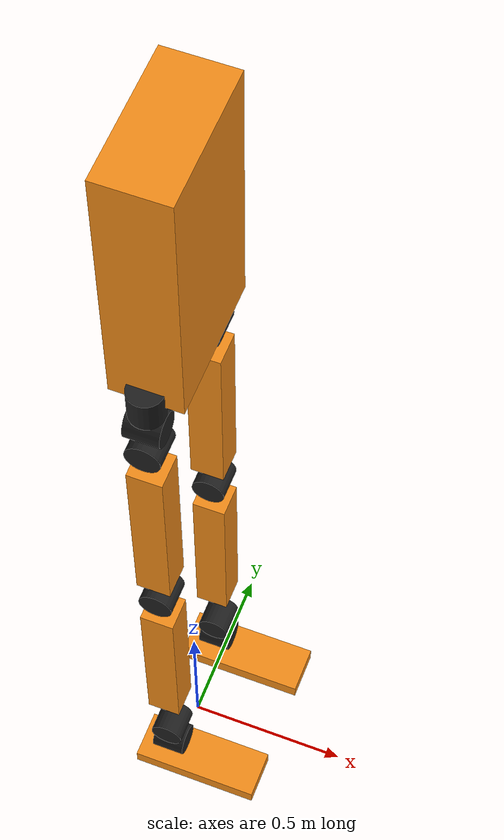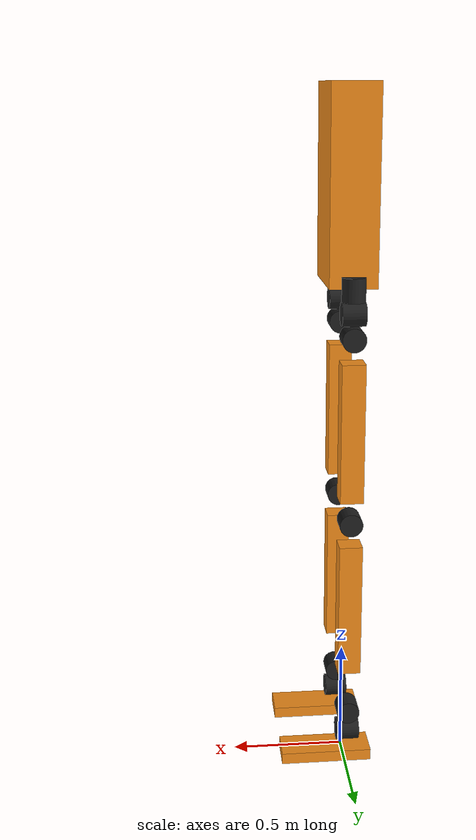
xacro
<?xml version='1.0'?>

<robot name="humanoid" xmlns:xacro="http://www.ros.org/wiki/xacro">

  <xacro:include filename="$(find humanoid_description)/urdf/humanoid.gazebo" />
  <xacro:include filename="$(find humanoid_description)/urdf/materials.xacro" />
  <xacro:include filename="$(find humanoid_description)/urdf/macros.xacro"    />
<!--lllllllllllllllllllllllllllllllllllllllllllllllllllllllllllll           sensors         lllllllllllllllllllllllllllllllllllllllll/-->

 <link name='imu'>
    <inertial>
      <mass value="1.0"/>
      <origin xyz="0.0 0.0 2.6" rpy=" 0 0 0"/>
      <inertia
          ixx="0.5" ixy="0" ixz="0"
          iyy="1.0" iyz="0"
          izz="0.1"
      />
    </inertial>
    <collision name='collision'>
      <origin xyz="0.0 0.0 2.6" rpy=" 0 0 0"/>
      <geometry>
        <box size=".1 .1 .1"/>
      </geometry>
    </collision>
    <visual name='waist_visual'>
      <origin xyz="0.0 0.0 2.6" rpy=" 0 0 0"/>
      <geometry>
        <box size=".1 .1 .1"/>
      </geometry>
    </visual>
  </link>

  <!--lllllllllllllllllllllllllllllllllllllllllllllllllllllllllllll     sensors fixed joints    lllllllllllllllllllllllllllllllllllllllll/-->

  <joint name="imu_joint" type="fixed">
    <origin rpy="0 0 0" xyz="0 0 0"/>
    <parent link="waist"/>
    <child link="imu"/>
  </joint>

<!--lllllllllllllllllllllllllllllllllllllllllllllllllllllllllllll     waist_world fixed joint     lllllllllllllllllllllllllllllllllllllllll/-->

<!--lllllllllllllllllllllllllllllllllllllllllllllllllllllllllllll           waist         lllllllllllllllllllllllllllllllllllllllll/-->

 <link name='waist'>
    <inertial>
      <mass value="10.0"/>
      <origin xyz="0.0 0.0 2.6" rpy=" 0 0 0"/>
      <inertia
          ixx="0.5" ixy="0" ixz="0"
          iyy="1.0" iyz="0"
          izz="0.1"
      />
    </inertial>
    <collision name='collision'>
      <origin xyz="0.0 0.0 2.6" rpy=" 0 0 0"/>
      <geometry>
        <box size=".2 .5 .8"/>
      </geometry>
    </collision>
    <visual name='waist_visual'>
      <origin xyz="0.0 0.0 2.6" rpy=" 0 0 0"/>
      <geometry>
        <box size=".2 .4 .8"/>
      </geometry>
    </visual>
  </link>

  <!--lllllllllllllllllllllllllllllllllllllllllllllllllllllllllllll    waist fixed joints       lllllllllllllllllllllllllllllllllllllllll/-->

  <joint name="hipl1_joint" type="revolute">
    <axis xyz="0 0 1"/>
    <limit effort="1000.0" lower="-1.5707" upper="1.5707" velocity="0.0"/>
    <origin rpy="0 0 0" xyz="0 -0.2 2.2"/>
    <parent link="waist"/>
    <child link="hipl1"/>
  </joint>

  <joint name="hipr1_joint" type="revolute">
    <axis xyz="0 0 1"/>
    <limit effort="1000.0" lower="-1.5707" upper="1.5707" velocity="0.0"/>
    <origin rpy="0 0 0" xyz="0 0.2 2.2"/>
    <parent link="waist"/>
    <child link="hipr1"/>
  </joint>

<!--lllllllllllllllllllllllllllllllllllllllllllllllllllllllllllll           hip 1         lllllllllllllllllllllllllllllllllllllllll/-->

  <link name="hipl1">
    <!--origin xyz="0.1 -0.13 0.1" rpy="0 1.5707 1.5707"/-->
    <collision name="collision">
      <origin xyz="0 -0.0 0" rpy="0 0 0"/>
      <geometry>
        <cylinder radius="0.05" length="0.1"/>
      </geometry>
    </collision>
    <visual name="hipl1_visual">
      <origin xyz="0 -0.0 0" rpy="0 0 0"/>
      <geometry>
        <cylinder radius="0.05" length="0.1"/>
      </geometry>
    </visual>
    <inertial>
      <origin xyz="0 -0.0 0" rpy="0 0 0"/>
      <mass value="1"/>
      <cylinder_inertia m="1" r="0.05" h="0.1"/>
      <inertia
        ixx="1.0" ixy="0.0" ixz="0.0"
        iyy="1.0" iyz="0.0"
        izz="1.0"/>
    </inertial>
  </link>

  <link name="hipr1">
    <!--origin xyz="0.1 -0.13 0.1" rpy="0 1.5707 1.5707"/-->
    <collision name="collision">
      <origin xyz="0 0.0 0" rpy="0 0 0"/>
      <geometry>
        <cylinder radius="0.05" length="0.1"/>
      </geometry>
    </collision>
    <visual name="hipr1_visual">
      <origin xyz="0 0.0 0" rpy="0 0 0"/>
      <geometry>
        <cylinder radius="0.05" length="0.1"/>
      </geometry>
    </visual>
    <inertial>
      <origin xyz="0 0.0 0" rpy="0 0 0"/>
      <mass value="1"/>
      <cylinder_inertia m="1" r="0.05" h="0.1"/>
      <inertia
        ixx="1.0" ixy="0.0" ixz="0.0"
        iyy="1.0" iyz="0.0"
        izz="1.0"/>
    </inertial>
  </link>

  <!--lllllllllllllllllllllllllllllllllllllllllllllllllllllllllllll        joints          lllllllllllllllllllllllllllllllllllllllll/-->

  <joint name="hipl2_joint" type="revolute">
    <axis xyz="1 0 0"/>
    <limit effort="1000.0" lower="-1.5707" upper="1.5707" velocity="0.0"/>
    <origin rpy="0 0 0" xyz="0 0.0 -0.1"/>
    <parent link="hipl1"/>
    <child link="hipl2"/>
  </joint>

  <joint name="hipr2_joint" type="revolute">
    <axis xyz="1 0 0"/>
    <limit effort="1000.0" lower="-1.5707" upper="1.5707" velocity="0.0"/>
    <origin rpy="0 0 0" xyz="0 0.0 -0.1"/>
    <parent link="hipr1"/>
    <child link="hipr2"/>
  </joint>

<!--lllllllllllllllllllllllllllllllllllllllllllllllllllllllllllll           hip 1         lllllllllllllllllllllllllllllllllllllllll/-->

  <link name="hipl2">
    <!--origin xyz="0.1 -0.13 0.1" rpy="0 1.5707 1.5707"/-->
    <collision name="collision">
      <origin xyz="0 -0.0 0" rpy="0 1.5707 0"/>
      <geometry>
        <cylinder radius="0.05" length="0.1"/>
      </geometry>
    </collision>
    <visual name="hipl2_visual">
      <origin xyz="0 -0.0 0" rpy="0 1.5707 0"/>
      <geometry>
        <cylinder radius="0.05" length="0.1"/>
      </geometry>
    </visual>
    <inertial>
      <origin xyz="0 -0.0 0" rpy="0 1.5707 0"/>
      <mass value="1"/>
      <cylinder_inertia m="1" r="0.05" h="0.1"/>
      <inertia
        ixx="1.0" ixy="0.0" ixz="0.0"
        iyy="1.0" iyz="0.0"
        izz="1.0"/>
    </inertial>
  </link>

  <link name="hipr2">
    <!--origin xyz="0.1 -0.13 0.1" rpy="0 1.5707 1.5707"/-->
    <collision name="collision">
      <origin xyz="0 0.0 0" rpy="0 1.5707 0"/>
      <geometry>
        <cylinder radius="0.05" length="0.1"/>
      </geometry>
    </collision>
    <visual name="hipr2_visual">
      <origin xyz="0 0.0 0" rpy="0 1.5707 0"/>
      <geometry>
        <cylinder radius="0.05" length="0.1"/>
      </geometry>
    </visual>
    <inertial>
      <origin xyz="0 0.0 0" rpy="0 1.5707 0"/>
      <mass value="1"/>
      <cylinder_inertia m="1" r="0.05" h="0.1"/>
      <inertia
        ixx="1.0" ixy="0.0" ixz="0.0"
        iyy="1.0" iyz="0.0"
        izz="1.0"/>
    </inertial>
  </link>

  <!--lllllllllllllllllllllllllllllllllllllllllllllllllllllllllllll        joints          lllllllllllllllllllllllllllllllllllllllll/-->

  <joint name="hipl3_joint" type="revolute">
    <axis xyz="0 1 0"/>
    <limit effort="1000.0" lower="-1.5707" upper="1.5707" velocity="0.0"/>
    <origin rpy="0 0 0" xyz="0 0.0 -0.1"/>
    <parent link="hipl2"/>
    <child link="hipl3"/>
  </joint>

  <joint name="hipr3_joint" type="revolute">
    <axis xyz="0 1 0"/>
    <limit effort="1000.0" lower="-1.5707" upper="1.5707" velocity="0.0"/>
    <origin rpy="0 0 0" xyz="0 0.0 -0.1"/>
    <parent link="hipr2"/>
    <child link="hipr3"/>
  </joint>

<!--lllllllllllllllllllllllllllllllllllllllllllllllllllllllllllll           hip 3         lllllllllllllllllllllllllllllllllllllllll/-->

  <link name="hipl3">
    <!--origin xyz="0.1 -0.13 0.1" rpy="0 1.5707 1.5707"/-->
    <collision name="collision">
      <origin xyz="0 -0.0 0" rpy="1.5707 0 0"/>
      <geometry>
        <cylinder radius="0.05" length="0.1"/>
      </geometry>
    </collision>
    <visual name="hipl3_visual">
      <origin xyz="0 -0.0 0" rpy="1.5707 0 0"/>
      <geometry>
        <cylinder radius="0.05" length="0.1"/>
      </geometry>
    </visual>
    <inertial>
      <origin xyz="0 -0.0 0" rpy="1.5707 0 0"/>
      <mass value="1"/>
      <cylinder_inertia m="1" r="0.05" h="0.1"/>
      <inertia
        ixx="1.0" ixy="0.0" ixz="0.0"
        iyy="1.0" iyz="0.0"
        izz="1.0"/>
    </inertial>
  </link>

  <link name="hipr3">
    <!--origin xyz="0.1 -0.13 0.1" rpy="0 1.5707 1.5707"/-->
    <collision name="collision">
      <origin xyz="0 0.0 0" rpy="1.5707 0 0"/>
      <geometry>
        <cylinder radius="0.05" length="0.1"/>
      </geometry>
    </collision>
    <visual name="hipr3_visual">
      <origin xyz="0 0.0 0" rpy="1.5707 0 0"/>
      <geometry>
        <cylinder radius="0.05" length="0.1"/>
      </geometry>
    </visual>
    <inertial>
      <origin xyz="0 0.0 0" rpy="1.5707 0 0"/>
      <mass value="1"/>
      <cylinder_inertia m="1" r="0.05" h="0.1"/>
      <inertia
        ixx="1.0" ixy="0.0" ixz="0.0"
        iyy="1.0" iyz="0.0"
        izz="1.0"/>
    </inertial>
  </link>

  <!--lllllllllllllllllllllllllllllllllllllllllllllllllllllllllllll      thigh fixed  joints          lllllllllllllllllllllllllllllllllllllllll/-->

  <joint name="thighl_joint" type="fixed">
    <origin rpy="0 0 0" xyz="0 0.0 -0.1"/>
    <parent link="hipl3"/>
    <child link="thighl"/>
  </joint>

  <joint name="thighr_joint" type="fixed">
    <origin rpy="0 0 0" xyz="0 0.0 -0.1"/>
    <parent link="hipr3"/>
    <child link="thighr"/>
  </joint>

<!--lllllllllllllllllllllllllllllllllllllllllllllllllllllllllllll           thigh         lllllllllllllllllllllllllllllllllllllllll/-->

  <link name='thighl'>
    <inertial>
      <mass value="10.0"/>
      <origin xyz="0.0 0.0 -0.3" rpy=" 0 0 0"/>
      <inertia
          ixx="0.5" ixy="0" ixz="0"
          iyy="1.0" iyz="0"
          izz="0.1"
      />
    </inertial>
    <collision name='collision'>
      <origin xyz="0.0 0.0 -0.3" rpy=" 0 0 0"/>
      <geometry>
        <box size=".1 .1 0.6"/>
      </geometry>
    </collision>
    <visual name='thighl_visual'>
      <origin xyz="0.0 0.0 -0.3" rpy=" 0 0 0"/>
      <geometry>
        <box size=".1 .1 0.6"/>
      </geometry>
    </visual>
  </link>

  <link name='thighr'>
    <inertial>
      <mass value="10.0"/>
      <origin xyz="0.0 0.0 -0.3" rpy=" 0 0 0"/>
      <inertia
          ixx="0.5" ixy="0" ixz="0"
          iyy="1.0" iyz="0"
          izz="0.1"
      />
    </inertial>
    <collision name='collision'>
      <origin xyz="0.0 0.0 -0.3" rpy=" 0 0 0"/>
      <geometry>
        <box size=".1 .1 0.6"/>
      </geometry>
    </collision>
    <visual name='thighr_visual'>
      <origin xyz="0.0 0.0 -0.3" rpy=" 0 0 0"/>
      <geometry>
        <box size=".1 .1 0.6"/>
      </geometry>
    </visual>
  </link>

  <!--lllllllllllllllllllllllllllllllllllllllllllllllllllllllllllll      knee  joints          lllllllllllllllllllllllllllllllllllllllll/-->

  <joint name="kneel_joint" type="revolute">
    <axis xyz="0 -1 0"/>
    <limit effort="1000.0" lower="-3" upper="0" velocity="0.0"/>
    <origin rpy="0 0 0" xyz="0 0.0 -0.7"/>
    <parent link="thighl"/>
    <child link="kneel"/>
  </joint>

  <joint name="kneer_joint" type="revolute">
    <axis xyz="0 -1 0"/>
    <limit effort="1000.0" lower="-3" upper="0" velocity="0.0"/>
    <origin rpy="0 0 0" xyz="0 0.0 -0.7"/>
    <parent link="thighr"/>
    <child link="kneer"/>
  </joint>

<!--lllllllllllllllllllllllllllllllllllllllllllllllllllllllllllll           knee         lllllllllllllllllllllllllllllllllllllllll/-->

  <link name="kneel">
    <!--origin xyz="0.1 -0.13 0.1" rpy="0 1.5707 1.5707"/-->
    <collision name="collision">
      <origin xyz="0 -0.0 0" rpy="1.5707 0 0"/>
      <geometry>
        <cylinder radius="0.05" length="0.1"/>
      </geometry>
    </collision>
    <visual name="kneel_visual">
      <origin xyz="0 -0.0 0" rpy="1.5707 0 0"/>
      <geometry>
        <cylinder radius="0.05" length="0.1"/>
      </geometry>
    </visual>
    <inertial>
      <origin xyz="0 -0.0 0" rpy="1.5707 0 0"/>
      <mass value="1"/>
      <cylinder_inertia m="1" r="0.05" h="0.1"/>
      <inertia
        ixx="1.0" ixy="0.0" ixz="0.0"
        iyy="1.0" iyz="0.0"
        izz="1.0"/>
    </inertial>
  </link>

  <link name="kneer">
    <!--origin xyz="0.1 -0.13 0.1" rpy="0 1.5707 1.5707"/-->
    <collision name="collision">
      <origin xyz="0 0.0 0" rpy="1.5707 0 0"/>
      <geometry>
        <cylinder radius="0.05" length="0.1"/>
      </geometry>
    </collision>
    <visual name="kneer_visual">
      <origin xyz="0 0.0 0" rpy="1.5707 0 0"/>
      <geometry>
        <cylinder radius="0.05" length="0.1"/>
      </geometry>
    </visual>
    <inertial>
      <origin xyz="0 0.0 0" rpy="1.5707 0 0"/>
      <mass value="1"/>
      <cylinder_inertia m="1" r="0.05" h="0.1"/>
      <inertia
        ixx="1.0" ixy="0.0" ixz="0.0"
        iyy="1.0" iyz="0.0"
        izz="1.0"/>
    </inertial>
  </link>

  <!--lllllllllllllllllllllllllllllllllllllllllllllllllllllllllllll       shank fixed joints          lllllllllllllllllllllllllllllllllllllllll/-->

  <joint name="shankl_joint" type="fixed">
    <origin rpy="0 0 0" xyz="0 0.0 -0.1"/>
    <parent link="kneel"/>
    <child link="shankl"/>
  </joint>

  <joint name="shankr_joint" type="fixed">
    <origin rpy="0 0 0" xyz="0 0.0 -0.1"/>
    <parent link="kneer"/>
    <child link="shankr"/>
  </joint>

<!--lllllllllllllllllllllllllllllllllllllllllllllllllllllllllllll           shank        lllllllllllllllllllllllllllllllllllllllll/-->

  <link name='shankl'>
    <inertial>
      <mass value="10.0"/>
      <origin xyz="0.0 0.0 -0.3" rpy=" 0 0 0"/>
      <inertia
          ixx="0.5" ixy="0" ixz="0"
          iyy="1.0" iyz="0"
          izz="0.1"
      />
    </inertial>
    <collision name='collision'>
      <origin xyz="0.0 0.0 -0.3" rpy=" 0 0 0"/>
      <geometry>
        <box size=".1 .1 0.6"/>
      </geometry>
    </collision>
    <visual name='shankl_visual'>
      <origin xyz="0.0 0.0 -0.3" rpy=" 0 0 0"/>
      <geometry>
        <box size=".1 .1 0.6"/>
      </geometry>
    </visual>
  </link>

  <link name='shankr'>
    <inertial>
      <mass value="10.0"/>
      <origin xyz="0.0 0.0 -0.3" rpy=" 0 0 0"/>
      <inertia
          ixx="0.5" ixy="0" ixz="0"
          iyy="1.0" iyz="0"
          izz="0.1"
      />
    </inertial>
    <collision name='collision'>
      <origin xyz="0.0 0.0 -0.3" rpy=" 0 0 0"/>
      <geometry>
        <box size=".1 .1 0.6"/>
      </geometry>
    </collision>
    <visual name='shankr_visual'>
      <origin xyz="0.0 0.0 -0.3" rpy=" 0 0 0"/>
      <geometry>
        <box size=".1 .1 0.6"/>
      </geometry>
    </visual>
  </link>

  <!--lllllllllllllllllllllllllllllllllllllllllllllllllllllllllllll      ankle1  joints          lllllllllllllllllllllllllllllllllllllllll/-->

  <joint name="anklel1_joint" type="revolute">
    <axis xyz="0 1 0"/>
    <limit effort="1000.0" lower="-1.5707" upper="1.5707" velocity="0.0"/>
    <origin rpy="0 0 0" xyz="0 0.0 -0.8"/>
    <parent link="shankl"/>
    <child link="anklel1"/>
  </joint>

  <joint name="ankler1_joint" type="revolute">
    <axis xyz="0 1 0"/>
    <limit effort="1000.0" lower="-1.5707" upper="1.5707" velocity="0.0"/>
    <origin rpy="0 0 0" xyz="0 0.0 -0.8"/>
    <parent link="shankr"/>
    <child link="ankler1"/>
  </joint>

<!--lllllllllllllllllllllllllllllllllllllllllllllllllllllllllllll           ankle 1         lllllllllllllllllllllllllllllllllllllllll/-->

  <link name="anklel1">

    <collision name="collision">
      <origin xyz="0 -0.0 0" rpy="1.5707 0 0"/>
      <geometry>
        <cylinder radius="0.05" length="0.1"/>
      </geometry>
    </collision>
    <visual name="anklel1_visual">
      <origin xyz="0 -0.0 0" rpy="1.5707 0 0"/>
      <geometry>
        <cylinder radius="0.05" length="0.1"/>
      </geometry>
    </visual>
    <inertial>
      <origin xyz="0 -0.0 0" rpy="1.5707 0 0"/>
      <mass value="1"/>
      <cylinder_inertia m="1" r="0.05" h="0.1"/>
      <inertia
        ixx="1.0" ixy="0.0" ixz="0.0"
        iyy="1.0" iyz="0.0"
        izz="1.0"/>
    </inertial>
  </link>

  <link name="ankler1">

    <collision name="collision">
      <origin xyz="0 0.0 0" rpy="1.5707 0 0"/>
      <geometry>
        <cylinder radius="0.05" length="0.1"/>
      </geometry>
    </collision>
    <visual name="ankler1_visual">
      <origin xyz="0 0.0 0" rpy="1.5707 0 0"/>
      <geometry>
        <cylinder radius="0.05" length="0.1"/>
      </geometry>
    </visual>
    <inertial>
      <origin xyz="0 0.0 0" rpy="1.5707 0 0"/>
      <mass value="1"/>
      <cylinder_inertia m="1" r="0.05" h="0.1"/>
      <inertia
        ixx="1.0" ixy="0.0" ixz="0.0"
        iyy="1.0" iyz="0.0"
        izz="1.0"/>
    </inertial>
  </link>

  <!--lllllllllllllllllllllllllllllllllllllllllllllllllllllllllllll      ankle2  joints          lllllllllllllllllllllllllllllllllllllllll/-->

  <joint name="anklel2_joint" type="revolute">
    <axis xyz="1 0 0"/>
    <limit effort="1000.0" lower="-1.5707" upper="1.5707" velocity="0.0"/>
    <origin rpy="0 0 0" xyz="0 0.0 -0.1"/>
    <parent link="anklel1"/>
    <child link="anklel2"/>
  </joint>

  <joint name="ankler2_joint" type="revolute">
    <axis xyz="1 0 0"/>
    <limit effort="1000.0" lower="-1.5707" upper="1.5707" velocity="0.0"/>
    <origin rpy="0 0 0" xyz="0 0.0 -0.1"/>
    <parent link="ankler1"/>
    <child link="ankler2"/>
  </joint>

<!--lllllllllllllllllllllllllllllllllllllllllllllllllllllllllllll           ankle 2         lllllllllllllllllllllllllllllllllllllllll/-->

  <link name="anklel2">

    <collision name="collision">
      <origin xyz="0 -0.0 0" rpy="0 1.5707 0"/>
      <geometry>
        <cylinder radius="0.05" length="0.1"/>
      </geometry>
    </collision>
    <visual name="anklel2_visual">
      <origin xyz="0 -0.0 0" rpy="0 1.5707 0"/>
      <geometry>
        <cylinder radius="0.05" length="0.1"/>
      </geometry>
    </visual>
    <inertial>
      <origin xyz="0 -0.0 0" rpy="0 1.5707 0"/>
      <mass value="1"/>
      <cylinder_inertia m="1" r="0.05" h="0.1"/>
      <inertia
        ixx="1.0" ixy="0.0" ixz="0.0"
        iyy="1.0" iyz="0.0"
        izz="1.0"/>
    </inertial>
  </link>

  <link name="ankler2">

    <collision name="collision">
      <origin xyz="0 0.0 0" rpy="0 1.5707 0"/>
      <geometry>
        <cylinder radius="0.05" length="0.1"/>
      </geometry>
    </collision>
    <visual name="ankler2_visual">
      <origin xyz="0 0.0 0" rpy="0 1.5707 0"/>
      <geometry>
        <cylinder radius="0.05" length="0.1"/>
      </geometry>
    </visual>
    <inertial>
      <origin xyz="0 0.0 0" rpy="0 1.5707 0"/>
      <mass value="1"/>
      <cylinder_inertia m="1" r="0.05" h="0.1"/>
      <inertia
        ixx="1.0" ixy="0.0" ixz="0.0"
        iyy="1.0" iyz="0.0"
        izz="1.0"/>
    </inertial>
  </link>

  <!--lllllllllllllllllllllllllllllllllllllllllllllllllllllllllllll      feet  fixed joints          lllllllllllllllllllllllllllllllllllllllll/-->

  <joint name="footl_joint" type="fixed">
    <origin rpy="0 0 0" xyz="0 0.0 -0.1"/>
    <parent link="anklel2"/>
    <child link="footl"/>
  </joint>

  <joint name="footr_joint" type="fixed">
    <origin rpy="0 0 0" xyz="0 0.0 -0.1"/>
    <parent link="ankler2"/>
    <child link="footr"/>
  </joint>

<!--lllllllllllllllllllllllllllllllllllllllllllllllllllllllllllll           feet         lllllllllllllllllllllllllllllllllllllllll/-->

 <link name='footl'>
    <inertial>
      <mass value="10.0"/>
      <origin xyz="0.0 0.0 0.0" rpy=" 0 0 0"/>
      <inertia
          ixx="0.5" ixy="0" ixz="0"
          iyy="1.0" iyz="0"
          izz="0.1"
      />
    </inertial>
    <collision name='collision'>
      <origin xyz="0.1 0.0 0.0" rpy=" 0 0 0"/>
      <geometry>
        <box size=".4 .15 .05"/>
      </geometry>
    </collision>
    <visual name='footl_visual'>
      <origin xyz="0.1 0.0 0.0" rpy=" 0 0 0"/>
      <geometry>
        <box size=".4 .15 .05"/>
      </geometry>
    </visual>
  </link>

 <link name='footr'>
    <inertial>
      <mass value="10.0"/>
      <origin xyz="0.1 0.0 0.0" rpy=" 0 0 0"/>
      <inertia
          ixx="0.5" ixy="0" ixz="0"
          iyy="1.0" iyz="0"
          izz="0.1"
      />
    </inertial>
    <collision name='collision'>
      <origin xyz="0.1 0.0 0.0" rpy=" 0 0 0"/>
      <geometry>
        <box size=".4 .15 .05"/>
      </geometry>
    </collision>
    <visual name='footr_visual'>
      <origin xyz="0.1 0.0 0.0" rpy=" 0 0 0"/>
      <geometry>
        <box size=".4 .15 .05"/>
      </geometry>
    </visual>
  </link>

</robot>
